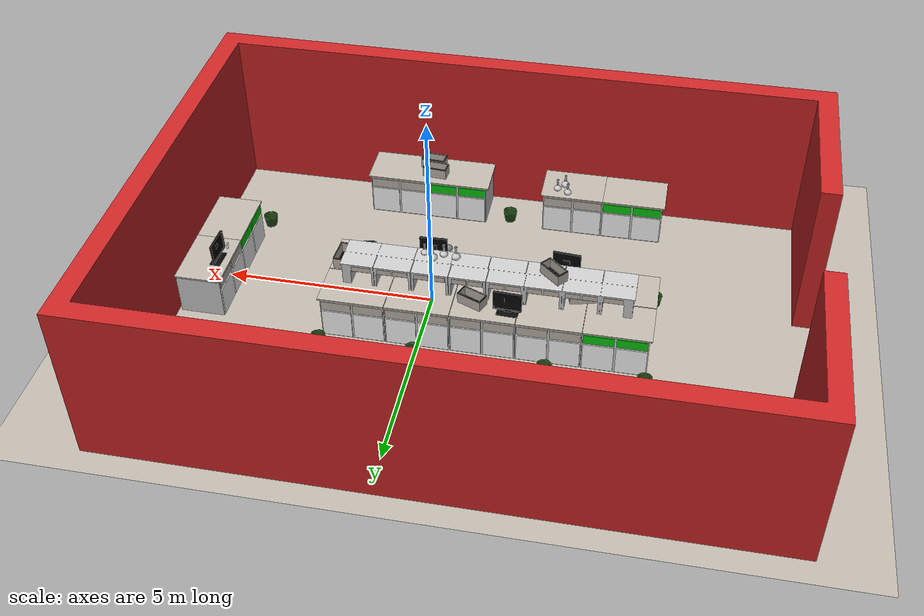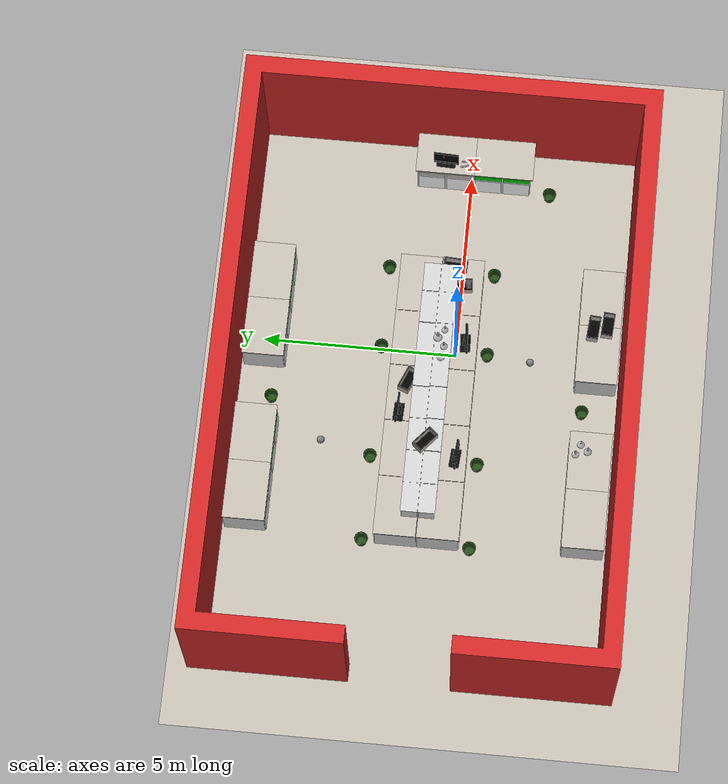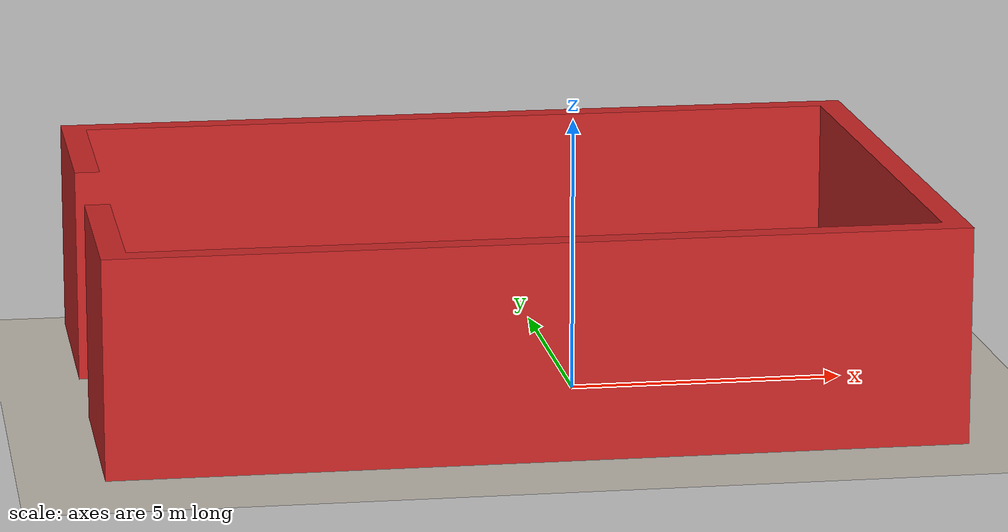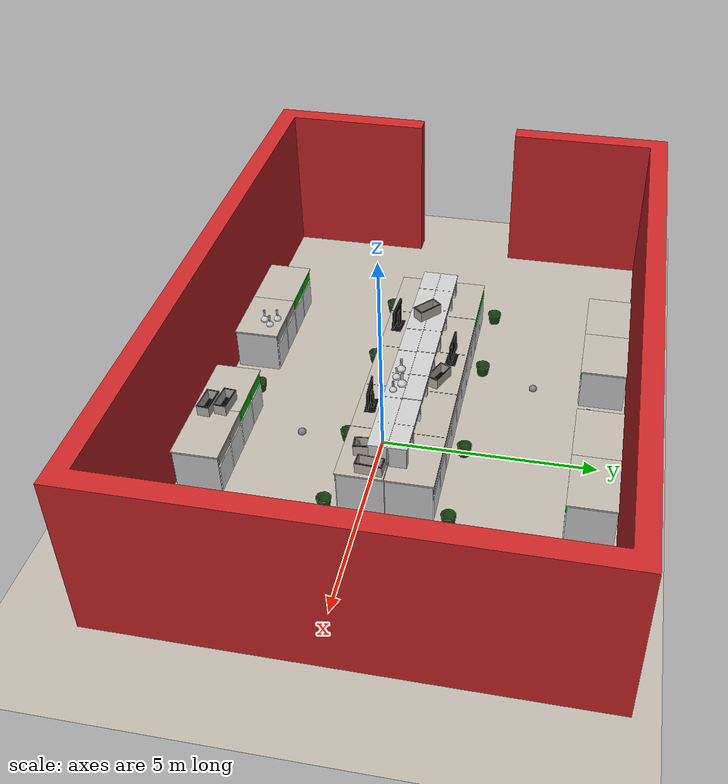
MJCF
<mujoco model="lab">
  <compiler angle="radian" />
  <default>
    <default class="visual">
      <geom group="2" type="mesh" contype="0" conaffinity="0" />
    </default>
    <default class="collision">
      <geom group="3" type="mesh" />
    </default>
  </default>
  <asset>
    <material name="bancada" specular="0.0" shininess="0.03455999" rgba="0.800000 0.800000 0.800000 1.000000" />
    <material name="bancada.001" specular="0.0" shininess="0.03455999" rgba="0.800000 0.800000 0.800000 1.000000" />
    <material name="borda" specular="0.0" shininess="0.0" rgba="0.000000 0.000000 0.000000 1.000000" />
    <texture type="2d" name="Image_0" file="./visual/Image_0.png" />
    <material name="caixa1" texture="Image_0" specular="0.5" shininess="0.028800007000000002" />
    <material name="caixa2" specular="0.0" shininess="0.002709723" rgba="0.127983 0.296513 0.084687 1.000000" />
    <texture type="2d" name="Image_8" file="./visual/Image_8.png" />
    <material name="chao" texture="Image_8" specular="0.5" shininess="0.028800007000000002" />
    <material name="gaveta" specular="0.0" shininess="0.015430858" rgba="0.040448 0.800000 0.066817 1.000000" />
    <texture type="2d" name="Image_6" file="./visual/Image_6.png" />
    <material name="gaveta.001" texture="Image_6" specular="0.5" shininess="0.015430858" />
    <material name="lambert1" specular="0.0" shininess="0.143999983" rgba="0.500000 0.500000 0.500000 1.000000" />
    <texture type="2d" name="Image_5" file="./visual/Image_5.png" />
    <material name="marmore" texture="Image_5" specular="0.5" shininess="0.001382468" />
    <material name="material" specular="0.0" shininess="2.8533e-05" rgba="0.025181 0.025181 0.025181 1.000000" />
    <texture type="2d" name="Image_7" file="./visual/Image_7.png" />
    <material name="parede" texture="Image_7" specular="0.5" shininess="0.028800007000000002" />
    <material name="porta" specular="0.0" shininess="0.045000011" rgba="1.000000 1.000000 1.000000 1.000000" />
    <material name="porta.001" specular="0.0" shininess="0.045000011" rgba="1.000000 1.000000 1.000000 1.000000" />
    <texture type="2d" name="Image_2" file="./visual/Image_2.png" />
    <material name="tela1" texture="Image_2" specular="0.5" shininess="0.057599994" />
    <texture type="2d" name="Image_1" file="./visual/Image_1.png" />
    <material name="tela2" texture="Image_1" specular="0.5" shininess="0.057599994" />
    <texture type="2d" name="Image_3" file="./visual/Image_3.png" />
    <material name="tela3" texture="Image_3" specular="0.5" shininess="0.057599994" />
    <texture type="2d" name="Image_4" file="./visual/Image_4.png" />
    <material name="tela4" texture="Image_4" specular="0.5" shininess="0.057599994" />
    <material name="transparencia" specular="0.0" shininess="0.03455999" rgba="0.800000 0.800000 0.800000 1.000000" />
    <material name="transparencia.001" specular="0.0" shininess="0.03455999" rgba="0.800000 0.800000 0.800000 1.000000" />
    <mesh file="./visual/lab_0.obj" scale="1.30000 1.30000 1.30000" />
    <mesh file="./visual/lab_1.obj" scale="1.30000 1.30000 1.30000" />
    <mesh file="./visual/lab_2.obj" scale="1.30000 1.30000 1.30000" />
    <mesh file="./visual/lab_3.obj" scale="1.30000 1.30000 1.30000" />
    <mesh file="./visual/lab_4.obj" scale="1.30000 1.30000 1.30000" />
    <mesh file="./visual/lab_5.obj" scale="1.30000 1.30000 1.30000" />
    <mesh file="./visual/lab_6.obj" scale="1.30000 1.30000 1.30000" />
    <mesh file="./visual/lab_7.obj" scale="1.30000 1.30000 1.30000" />
    <mesh file="./visual/lab_8.obj" scale="1.30000 1.30000 1.30000" />
    <mesh file="./visual/lab_9.obj" scale="1.30000 1.30000 1.30000" />
    <mesh file="./visual/lab_10.obj" scale="1.30000 1.30000 1.30000" />
    <mesh file="./visual/lab_11.obj" scale="1.30000 1.30000 1.30000" />
    <mesh file="./visual/lab_12.obj" scale="1.30000 1.30000 1.30000" />
    <mesh file="./visual/lab_13.obj" scale="1.30000 1.30000 1.30000" />
    <mesh file="./visual/lab_14.obj" scale="1.30000 1.30000 1.30000" />
    <mesh file="./visual/lab_15.obj" scale="1.30000 1.30000 1.30000" />
    <mesh file="./visual/lab_16.obj" scale="1.30000 1.30000 1.30000" />
    <mesh file="./visual/lab_17.obj" scale="1.30000 1.30000 1.30000" />
    <mesh file="./visual/lab_18.obj" scale="1.30000 1.30000 1.30000" />
    <mesh file="./visual/lab_19.obj" scale="1.30000 1.30000 1.30000" />
    <mesh file="./visual/lab_20.obj" scale="1.30000 1.30000 1.30000" />
    <texture file="./textures/tile_grigia_caldera_porcelain_floor.png" type="2d" name="texplane" />
    <material name="floorplane" reflectance="0.0" shininess="0.0" specular="0.0" texrepeat="3 3" texture="texplane" texuniform="true" />
  </asset>
  <worldbody>
    <geom condim="3" group="1" material="floorplane" name="floor" pos="0.00000 0.00000 0.00000" size="10.40000 6.50000 0.16250" type="plane" />
    <light pos="0 0 7" dir="0 0 -1" directional="true" ambient="0.2 0.2 0.2" diffuse="0.5 0.5 0.5" specular="0. 0. 0." castshadow="true" />
    <body name="lab" euler="1.57 0 0">

      <geom mesh="lab_1" material="parede" class="visual" />
      <geom mesh="lab_2" material="transparencia.001" class="visual" />
      <geom mesh="lab_3" material="transparencia" class="visual" />
      <geom mesh="lab_4" material="porta.001" class="visual" />
      <geom mesh="lab_5" material="gaveta.001" class="visual" />
      <geom mesh="lab_6" material="marmore" class="visual" />
      <geom mesh="lab_7" material="bancada.001" class="visual" />
      <geom mesh="lab_8" material="porta" class="visual" />
      <geom mesh="lab_9" material="gaveta" class="visual" />
      <geom mesh="lab_10" material="marmore" class="visual" />
      <geom mesh="lab_11" material="bancada" class="visual" />

      <geom mesh="lab_15" material="caixa2" class="visual" />
      <geom mesh="lab_16" material="tela2" class="visual" />
      <geom mesh="lab_17" material="material" class="visual" />
      <geom mesh="lab_18" material="caixa1" class="visual" />
      <geom mesh="lab_19" material="borda" class="visual" />

    </body>
    <site type="sphere" size="0.1" pos="-2.60000 3.25000 0.00000" />
    <site type="sphere" size="0.1" pos="0.00000 -1.95000 0.00000" />
  </worldbody>
</mujoco>
